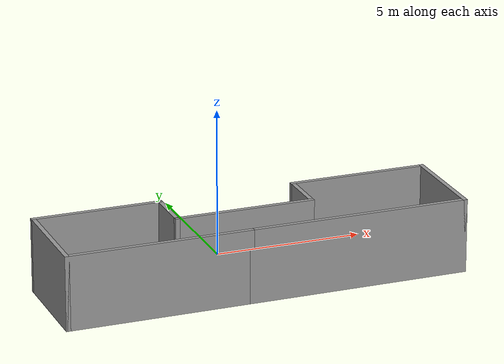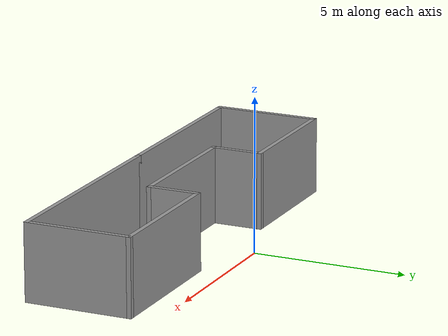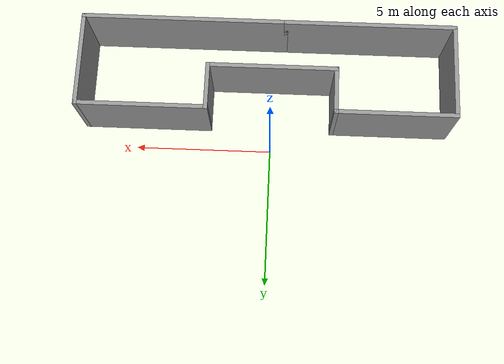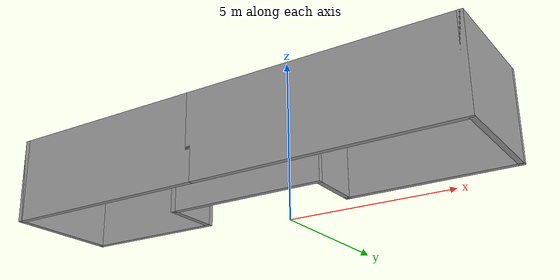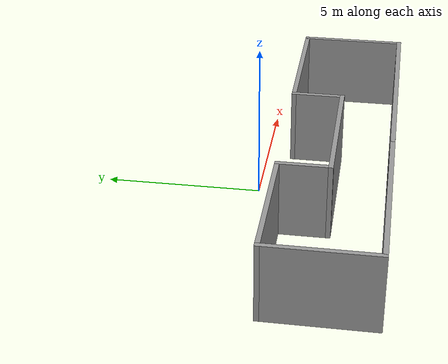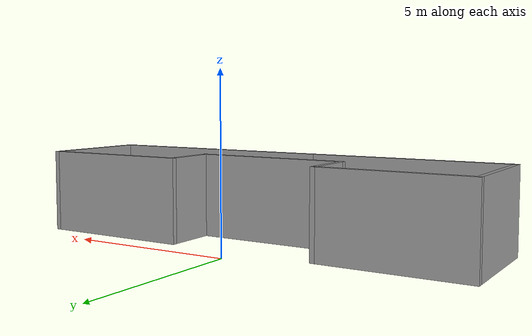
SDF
<?xml version='1.0'?>
<sdf version='1.7'>
  <model name='flat'>
    <pose>0.185 -2.1375 0 0 -0 0</pose>
    <link name='Wall_15'>
      <collision name='Wall_15_Collision'>
        <geometry>
          <box>
            <size>3.5 0.15 2.5</size>
          </box>
        </geometry>
        <pose>0 0 1.25 0 -0 0</pose>
      </collision>
      <visual name='Wall_15_Visual'>
        <pose>0 0 1.25 0 -0 0</pose>
        <geometry>
          <box>
            <size>3.5 0.15 2.5</size>
          </box>
        </geometry>
        <material>
          <script>
            <uri>file://media/materials/scripts/gazebo.material</uri>
            <name>Gazebo/Grey</name>
          </script>
          <ambient>1 1 1 1</ambient>
        </material>
        <meta>
          <layer>0</layer>
        </meta>
      </visual>
      <pose>-6.725 -0.3875 0 0 -0 -1.5708</pose>
    </link>
    <link name='Wall_16'>
      <collision name='Wall_16_Collision'>
        <geometry>
          <box>
            <size>6.25 0.15 2.5</size>
          </box>
        </geometry>
        <pose>0 0 1.25 0 -0 0</pose>
      </collision>
      <visual name='Wall_16_Visual'>
        <pose>0 0 1.25 0 -0 0</pose>
        <geometry>
          <box>
            <size>6.25 0.15 2.5</size>
          </box>
        </geometry>
        <material>
          <script>
            <uri>file://media/materials/scripts/gazebo.material</uri>
            <name>Gazebo/Grey</name>
          </script>
          <ambient>1 1 1 1</ambient>
        </material>
        <meta>
          <layer>0</layer>
        </meta>
      </visual>
      <pose>-3.675 -2.0625 0 0 -0 0</pose>
    </link>
    <link name='Wall_17'>
      <collision name='Wall_17_Collision'>
        <geometry>
          <box>
            <size>7.5 0.15 2.5</size>
          </box>
        </geometry>
        <pose>0 0 1.25 0 -0 0</pose>
      </collision>
      <visual name='Wall_17_Visual'>
        <pose>0 0 1.25 0 -0 0</pose>
        <geometry>
          <box>
            <size>7.5 0.15 2.5</size>
          </box>
        </geometry>
        <material>
          <script>
            <uri>file://media/materials/scripts/gazebo.material</uri>
            <name>Gazebo/Grey</name>
          </script>
          <ambient>1 1 1 1</ambient>
        </material>
        <meta>
          <layer>0</layer>
        </meta>
      </visual>
      <pose>3.05 -2.0625 0 0 -0 0</pose>
    </link>
    <link name='Wall_18'>
      <collision name='Wall_18_Collision'>
        <geometry>
          <box>
            <size>3.5 0.15 2.5</size>
          </box>
        </geometry>
        <pose>0 0 1.25 0 -0 0</pose>
      </collision>
      <visual name='Wall_18_Visual'>
        <pose>0 0 1.25 0 -0 0</pose>
        <geometry>
          <box>
            <size>3.5 0.15 2.5</size>
          </box>
        </geometry>
        <material>
          <script>
            <uri>file://media/materials/scripts/gazebo.material</uri>
            <name>Gazebo/Grey</name>
          </script>
          <ambient>1 1 1 1</ambient>
        </material>
        <meta>
          <layer>0</layer>
        </meta>
      </visual>
      <pose>6.725 -0.3875 0 0 -0 1.5708</pose>
    </link>
    <link name='Wall_19'>
      <collision name='Wall_19_Collision'>
        <geometry>
          <box>
            <size>4.75 0.15 2.5</size>
          </box>
        </geometry>
        <pose>0 0 1.25 0 -0 0</pose>
      </collision>
      <visual name='Wall_19_Visual'>
        <pose>0 0 1.25 0 -0 0</pose>
        <geometry>
          <box>
            <size>4.75 0.15 2.5</size>
          </box>
        </geometry>
        <material>
          <script>
            <uri>file://media/materials/scripts/gazebo.material</uri>
            <name>Gazebo/Grey</name>
          </script>
          <ambient>1 1 1 1</ambient>
        </material>
        <meta>
          <layer>0</layer>
        </meta>
      </visual>
      <pose>4.425 1.2875 0 0 -0 3.14159</pose>
    </link>
    <link name='Wall_20'>
      <collision name='Wall_20_Collision'>
        <geometry>
          <box>
            <size>1.75 0.15 2.5</size>
          </box>
        </geometry>
        <pose>0 0 1.25 0 -0 0</pose>
      </collision>
      <visual name='Wall_20_Visual'>
        <pose>0 0 1.25 0 -0 0</pose>
        <geometry>
          <box>
            <size>1.75 0.15 2.5</size>
          </box>
        </geometry>
        <material>
          <script>
            <uri>file://media/materials/scripts/gazebo.material</uri>
            <name>Gazebo/Grey</name>
          </script>
          <ambient>1 1 1 1</ambient>
        </material>
        <meta>
          <layer>0</layer>
        </meta>
      </visual>
      <pose>2.125 0.4875 0 0 -0 -1.5708</pose>
    </link>
    <link name='Wall_21'>
      <collision name='Wall_21_Collision'>
        <geometry>
          <box>
            <size>4.75 0.15 2.5</size>
          </box>
        </geometry>
        <pose>0 0 1.25 0 -0 0</pose>
      </collision>
      <visual name='Wall_21_Visual'>
        <pose>0 0 1.25 0 -0 0</pose>
        <geometry>
          <box>
            <size>4.75 0.15 2.5</size>
          </box>
        </geometry>
        <material>
          <script>
            <uri>file://media/materials/scripts/gazebo.material</uri>
            <name>Gazebo/Grey</name>
          </script>
          <ambient>1 1 1 1</ambient>
        </material>
        <meta>
          <layer>0</layer>
        </meta>
      </visual>
      <pose>-0.175 -0.3125 0 0 -0 3.14159</pose>
    </link>
    <link name='Wall_22'>
      <collision name='Wall_22_Collision'>
        <geometry>
          <box>
            <size>1.75 0.15 2.5</size>
          </box>
        </geometry>
        <pose>0 0 1.25 0 -0 0</pose>
      </collision>
      <visual name='Wall_22_Visual'>
        <pose>0 0 1.25 0 -0 0</pose>
        <geometry>
          <box>
            <size>1.75 0.15 2.5</size>
          </box>
        </geometry>
        <material>
          <script>
            <uri>file://media/materials/scripts/gazebo.material</uri>
            <name>Gazebo/Grey</name>
          </script>
          <ambient>1 1 1 1</ambient>
        </material>
        <meta>
          <layer>0</layer>
        </meta>
      </visual>
      <pose>-2.475 0.4875 0 0 -0 1.5708</pose>
    </link>
    <link name='Wall_23'>
      <collision name='Wall_23_Collision'>
        <geometry>
          <box>
            <size>4.4 0.15 2.5</size>
          </box>
        </geometry>
        <pose>0 0 1.25 0 -0 0</pose>
      </collision>
      <visual name='Wall_23_Visual'>
        <pose>0 0 1.25 0 -0 0</pose>
        <geometry>
          <box>
            <size>4.4 0.15 2.5</size>
          </box>
        </geometry>
        <material>
          <script>
            <uri>file://media/materials/scripts/gazebo.material</uri>
            <name>Gazebo/Grey</name>
          </script>
          <ambient>1 1 1 1</ambient>
        </material>
        <meta>
          <layer>0</layer>
        </meta>
      </visual>
      <pose>-4.6 1.2875 0 0 -0 3.14159</pose>
    </link>
    <static>1</static>
  </model>
</sdf>
